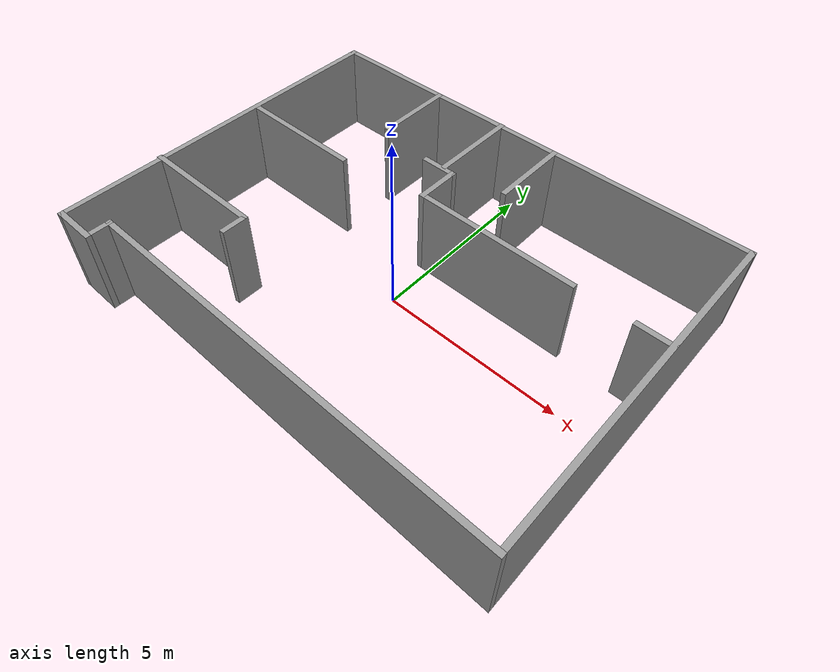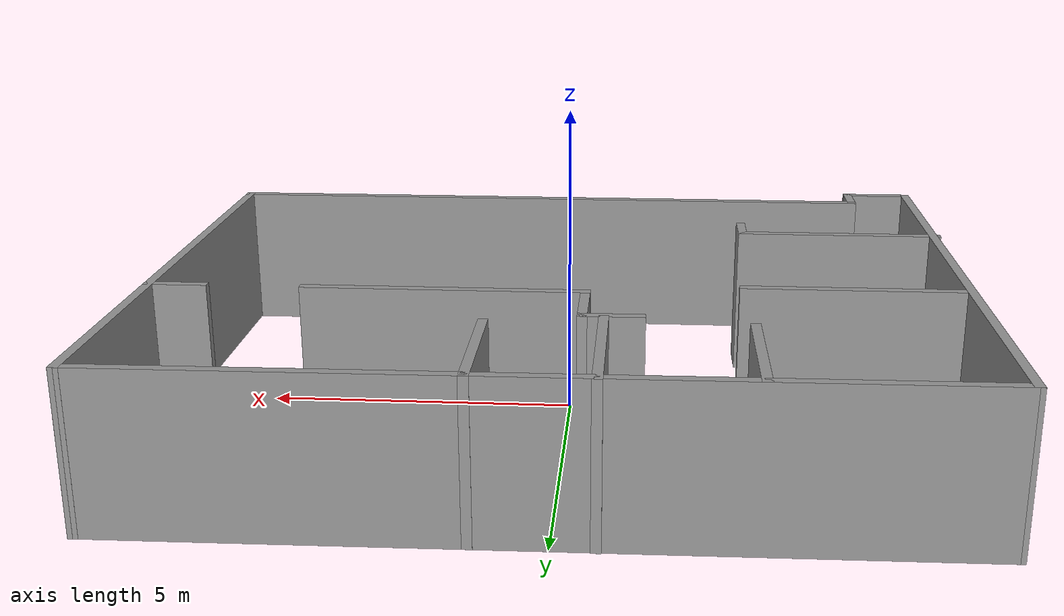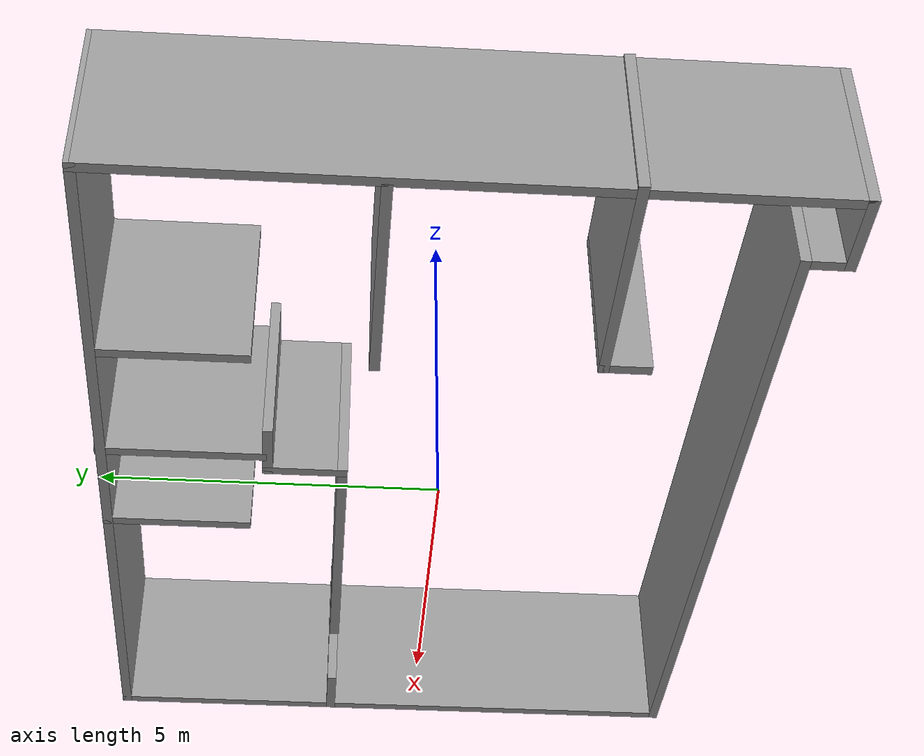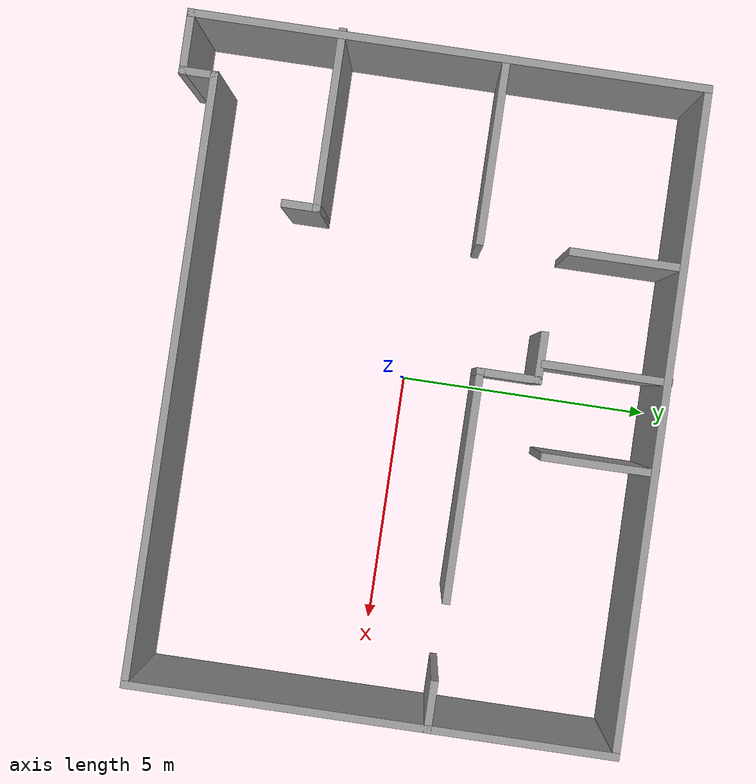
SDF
<?xml version='1.0'?>
<sdf version='1.6'>
  <model name='floorplan49test'>
    <pose frame=''>0.109491 0.045823 0 0 -0 0</pose>
    <link name='Wall_70'>
      <collision name='Wall_70_Collision'>
        <geometry>
          <box>
            <size>9.5 0.15 2.5</size>
          </box>
        </geometry>
        <pose frame=''>0 0 1.25 0 -0 0</pose>
      </collision>
      <visual name='Wall_70_Visual'>
        <pose frame=''>0 0 1.25 0 -0 0</pose>
        <geometry>
          <box>
            <size>9.5 0.15 2.5</size>
          </box>
        </geometry>
        <material>
          <script>
            <uri>file://media/materials/scripts/gazebo.material</uri>
            <name>Gazebo/Grey</name>
          </script>
          <ambient>1 1 1 1</ambient>
        </material>
        <meta>
          <layer>0</layer>
        </meta>
      </visual>
      <pose frame=''>6.37571 0.299706 0 0 -0 -1.5708</pose>
    </link>
    <link name='Wall_71'>
      <collision name='Wall_71_Collision'>
        <geometry>
          <box>
            <size>11.75 0.15 2.5</size>
          </box>
        </geometry>
        <pose frame=''>0 0 1.25 0 -0 0</pose>
      </collision>
      <visual name='Wall_71_Visual'>
        <pose frame=''>0 0 1.25 0 -0 0</pose>
        <geometry>
          <box>
            <size>11.75 0.15 2.5</size>
          </box>
        </geometry>
        <material>
          <script>
            <uri>file://media/materials/scripts/gazebo.material</uri>
            <name>Gazebo/Grey</name>
          </script>
          <ambient>1 1 1 1</ambient>
        </material>
        <meta>
          <layer>0</layer>
        </meta>
      </visual>
      <pose frame=''>0.575709 -4.37529 0 0 -0 3.14159</pose>
    </link>
    <link name='Wall_72'>
      <collision name='Wall_72_Collision'>
        <geometry>
          <box>
            <size>0.75 0.15 2.5</size>
          </box>
        </geometry>
        <pose frame=''>0 0 1.25 0 -0 0</pose>
      </collision>
      <visual name='Wall_72_Visual'>
        <pose frame=''>0 0 1.25 0 -0 0</pose>
        <geometry>
          <box>
            <size>0.75 0.15 2.5</size>
          </box>
        </geometry>
        <material>
          <script>
            <uri>file://media/materials/scripts/gazebo.material</uri>
            <name>Gazebo/Grey</name>
          </script>
          <ambient>1 1 1 1</ambient>
        </material>
        <meta>
          <layer>0</layer>
        </meta>
      </visual>
      <pose frame=''>-5.22429 -4.67529 0 0 -0 -1.5708</pose>
    </link>
    <link name='Wall_73'>
      <collision name='Wall_73_Collision'>
        <geometry>
          <box>
            <size>1.25 0.15 2.5</size>
          </box>
        </geometry>
        <pose frame=''>0 0 1.25 0 -0 0</pose>
      </collision>
      <visual name='Wall_73_Visual'>
        <pose frame=''>0 0 1.25 0 -0 0</pose>
        <geometry>
          <box>
            <size>1.25 0.15 2.5</size>
          </box>
        </geometry>
        <material>
          <script>
            <uri>file://media/materials/scripts/gazebo.material</uri>
            <name>Gazebo/Grey</name>
          </script>
          <ambient>1 1 1 1</ambient>
        </material>
        <meta>
          <layer>0</layer>
        </meta>
      </visual>
      <pose frame=''>-5.77429 -4.97529 0 0 -0 3.14159</pose>
    </link>
    <link name='Wall_74'>
      <collision name='Wall_74_Collision'>
        <geometry>
          <box>
            <size>10 0.15 2.5</size>
          </box>
        </geometry>
        <pose frame=''>0 0 1.25 0 -0 0</pose>
      </collision>
      <visual name='Wall_74_Visual'>
        <pose frame=''>0 0 1.25 0 -0 0</pose>
        <geometry>
          <box>
            <size>10 0.15 2.5</size>
          </box>
        </geometry>
        <material>
          <script>
            <uri>file://media/materials/scripts/gazebo.material</uri>
            <name>Gazebo/Grey</name>
          </script>
          <ambient>1 1 1 1</ambient>
        </material>
        <meta>
          <layer>0</layer>
        </meta>
      </visual>
      <pose frame=''>-6.32429 -0.050294 0 0 -0 1.5708</pose>
    </link>
    <link name='Wall_75'>
      <collision name='Wall_75_Collision'>
        <geometry>
          <box>
            <size>12.8504 0.15 2.5</size>
          </box>
        </geometry>
        <pose frame=''>0 0 1.25 0 -0 0</pose>
      </collision>
      <visual name='Wall_75_Visual'>
        <pose frame=''>0 0 1.25 0 -0 0</pose>
        <geometry>
          <box>
            <size>12.8504 0.15 2.5</size>
          </box>
        </geometry>
        <material>
          <script>
            <uri>file://media/materials/scripts/gazebo.material</uri>
            <name>Gazebo/Grey</name>
          </script>
          <ambient>1 1 1 1</ambient>
        </material>
        <meta>
          <layer>0</layer>
        </meta>
      </visual>
      <pose frame=''>0.025709 4.92471 0 0 -0 0.007874</pose>
    </link>
    <link name='Wall_77'>
      <collision name='Wall_77_Collision'>
        <geometry>
          <box>
            <size>3.5 0.15 2.5</size>
          </box>
        </geometry>
        <pose frame=''>0 0 1.25 0 -0 0</pose>
      </collision>
      <visual name='Wall_77_Visual'>
        <pose frame=''>0 0 1.25 0 -0 0</pose>
        <geometry>
          <box>
            <size>3.5 0.15 2.5</size>
          </box>
        </geometry>
        <material>
          <script>
            <uri>file://media/materials/scripts/gazebo.material</uri>
            <name>Gazebo/Grey</name>
          </script>
          <ambient>1 1 1 1</ambient>
        </material>
        <meta>
          <layer>0</layer>
        </meta>
      </visual>
      <pose frame=''>-4.7013 -2.10527 0 0 -0 0</pose>
    </link>
    <link name='Wall_78'>
      <collision name='Wall_78_Collision'>
        <geometry>
          <box>
            <size>0.75 0.15 2.5</size>
          </box>
        </geometry>
        <pose frame=''>0 0 1.25 0 -0 0</pose>
      </collision>
      <visual name='Wall_78_Visual'>
        <pose frame=''>0 0 1.25 0 -0 0</pose>
        <geometry>
          <box>
            <size>0.75 0.15 2.5</size>
          </box>
        </geometry>
        <material>
          <script>
            <uri>file://media/materials/scripts/gazebo.material</uri>
            <name>Gazebo/Grey</name>
          </script>
          <ambient>1 1 1 1</ambient>
        </material>
        <meta>
          <layer>0</layer>
        </meta>
      </visual>
      <pose frame=''>-3.0263 -2.40527 0 0 -0 -1.5708</pose>
    </link>
    <link name='Wall_80'>
      <collision name='Wall_80_Collision'>
        <geometry>
          <box>
            <size>3.5 0.15 2.5</size>
          </box>
        </geometry>
        <pose frame=''>0 0 1.25 0 -0 0</pose>
      </collision>
      <visual name='Wall_80_Visual'>
        <pose frame=''>0 0 1.25 0 -0 0</pose>
        <geometry>
          <box>
            <size>3.5 0.15 2.5</size>
          </box>
        </geometry>
        <material>
          <script>
            <uri>file://media/materials/scripts/gazebo.material</uri>
            <name>Gazebo/Grey</name>
          </script>
          <ambient>1 1 1 1</ambient>
        </material>
        <meta>
          <layer>0</layer>
        </meta>
      </visual>
      <pose frame=''>-4.54039 1.03245 0 0 -0 0</pose>
    </link>
    <link name='Wall_82'>
      <collision name='Wall_82_Collision'>
        <geometry>
          <box>
            <size>2.25 0.15 2.5</size>
          </box>
        </geometry>
        <pose frame=''>0 0 1.25 0 -0 0</pose>
      </collision>
      <visual name='Wall_82_Visual'>
        <pose frame=''>0 0 1.25 0 -0 0</pose>
        <geometry>
          <box>
            <size>2.25 0.15 2.5</size>
          </box>
        </geometry>
        <material>
          <script>
            <uri>file://media/materials/scripts/gazebo.material</uri>
            <name>Gazebo/Grey</name>
          </script>
          <ambient>1 1 1 1</ambient>
        </material>
        <meta>
          <layer>0</layer>
        </meta>
      </visual>
      <pose frame=''>-2.91676 3.84425 0 0 -0 -1.5708</pose>
    </link>
    <link name='Wall_84'>
      <collision name='Wall_84_Collision'>
        <geometry>
          <box>
            <size>1 0.15 2.5</size>
          </box>
        </geometry>
        <pose frame=''>0 0 1.25 0 -0 0</pose>
      </collision>
      <visual name='Wall_84_Visual'>
        <pose frame=''>0 0 1.25 0 -0 0</pose>
        <geometry>
          <box>
            <size>1 0.15 2.5</size>
          </box>
        </geometry>
        <material>
          <script>
            <uri>file://media/materials/scripts/gazebo.material</uri>
            <name>Gazebo/Grey</name>
          </script>
          <ambient>1 1 1 1</ambient>
        </material>
        <meta>
          <layer>0</layer>
        </meta>
      </visual>
      <pose frame=''>5.95071 1.39449 0 0 -0 3.14159</pose>
    </link>
    <link name='Wall_86'>
      <collision name='Wall_86_Collision'>
        <geometry>
          <box>
            <size>2.25 0.15 2.5</size>
          </box>
        </geometry>
        <pose frame=''>0 0 1.25 0 -0 0</pose>
      </collision>
      <visual name='Wall_86_Visual'>
        <pose frame=''>0 0 1.25 0 -0 0</pose>
        <geometry>
          <box>
            <size>2.25 0.15 2.5</size>
          </box>
        </geometry>
        <material>
          <script>
            <uri>file://media/materials/scripts/gazebo.material</uri>
            <name>Gazebo/Grey</name>
          </script>
          <ambient>1 1 1 1</ambient>
        </material>
        <meta>
          <layer>0</layer>
        </meta>
      </visual>
      <pose frame=''>0.985271 3.88448 0 0 -0 -1.5708</pose>
    </link>
    <link name='Wall_89'>
      <collision name='Wall_89_Collision'>
        <geometry>
          <box>
            <size>4.5 0.15 2.5</size>
          </box>
        </geometry>
        <pose frame=''>0 0 1.25 0 -0 0</pose>
      </collision>
      <visual name='Wall_89_Visual'>
        <pose frame=''>0 0 1.25 0 -0 0</pose>
        <geometry>
          <box>
            <size>4.5 0.15 2.5</size>
          </box>
        </geometry>
        <material>
          <script>
            <uri>file://media/materials/scripts/gazebo.material</uri>
            <name>Gazebo/Grey</name>
          </script>
          <ambient>1 1 1 1</ambient>
        </material>
        <meta>
          <layer>0</layer>
        </meta>
      </visual>
      <pose frame=''>1.74685 1.39449 0 0 -0 3.14159</pose>
    </link>
    <link name='Wall_93'>
      <collision name='Wall_93_Collision'>
        <geometry>
          <box>
            <size>1.25 0.15 2.5</size>
          </box>
        </geometry>
        <pose frame=''>0 0 1.25 0 -0 0</pose>
      </collision>
      <visual name='Wall_93_Visual'>
        <pose frame=''>0 0 1.25 0 -0 0</pose>
        <geometry>
          <box>
            <size>1.25 0.15 2.5</size>
          </box>
        </geometry>
        <material>
          <script>
            <uri>file://media/materials/scripts/gazebo.material</uri>
            <name>Gazebo/Grey</name>
          </script>
          <ambient>1 1 1 1</ambient>
        </material>
        <meta>
          <layer>0</layer>
        </meta>
      </visual>
      <pose frame=''>-0.428147 1.94449 0 0 -0 1.5708</pose>
    </link>
    <link name='Wall_94'>
      <collision name='Wall_94_Collision'>
        <geometry>
          <box>
            <size>1 0.15 2.5</size>
          </box>
        </geometry>
        <pose frame=''>0 0 1.25 0 -0 0</pose>
      </collision>
      <visual name='Wall_94_Visual'>
        <pose frame=''>0 0 1.25 0 -0 0</pose>
        <geometry>
          <box>
            <size>1 0.15 2.5</size>
          </box>
        </geometry>
        <material>
          <script>
            <uri>file://media/materials/scripts/gazebo.material</uri>
            <name>Gazebo/Grey</name>
          </script>
          <ambient>1 1 1 1</ambient>
        </material>
        <meta>
          <layer>0</layer>
        </meta>
      </visual>
      <pose frame=''>-0.853147 2.49449 0 0 -0 3.14159</pose>
    </link>
    <link name='Wall_96'>
      <collision name='Wall_96_Collision'>
        <geometry>
          <box>
            <size>2.5 0.15 2.5</size>
          </box>
        </geometry>
        <pose frame=''>0 0 1.25 0 -0 0</pose>
      </collision>
      <visual name='Wall_96_Visual'>
        <pose frame=''>0 0 1.25 0 -0 0</pose>
        <geometry>
          <box>
            <size>2.5 0.15 2.5</size>
          </box>
        </geometry>
        <material>
          <script>
            <uri>file://media/materials/scripts/gazebo.material</uri>
            <name>Gazebo/Grey</name>
          </script>
          <ambient>1 1 1 1</ambient>
        </material>
        <meta>
          <layer>0</layer>
        </meta>
      </visual>
      <pose frame=''>-0.744496 3.75948 0 0 -0 -1.5708</pose>
    </link>
    <static>1</static>
  </model>
</sdf>
